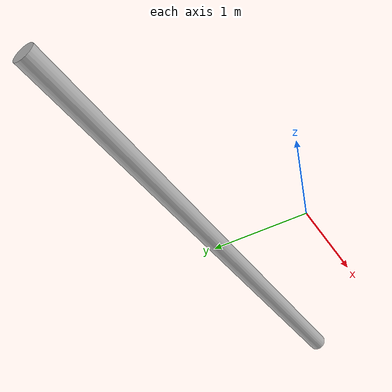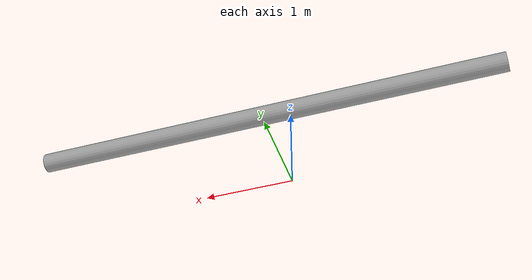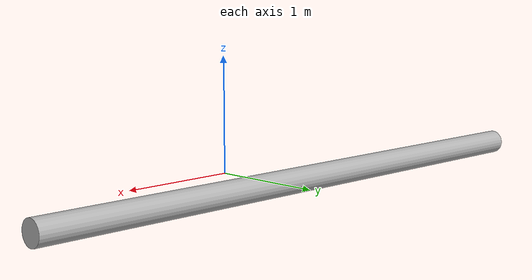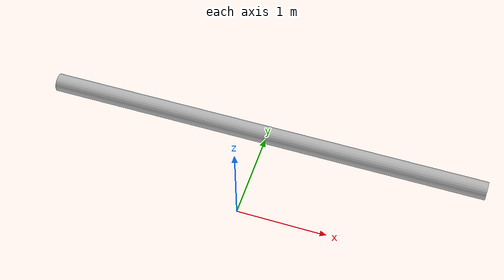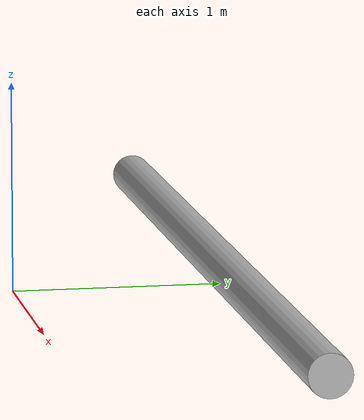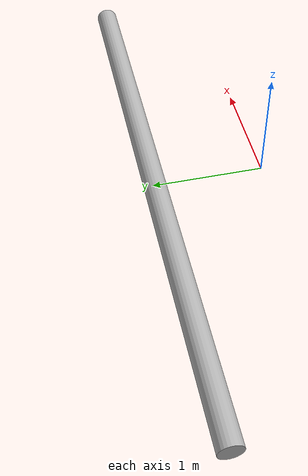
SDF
<?xml version="1.0" ?>
<sdf version="1.5">
    <model name="Pipe">
      <pose>0 1 .1 0 1.5708 0</pose>
      <static>false</static>
      <link name="Pipe">
        <collision name="collision">
          <geometry>
            <cylinder>
              <radius>0.1</radius>
              <length>5.0</length>
            </cylinder>
          </geometry>
        </collision>
        <visual name="visual">
          <geometry>
            <cylinder>
              <radius>0.1</radius>
              <length>5.0</length>
            </cylinder>
          </geometry>
        </visual>
      </link>
    </model>
</sdf>
